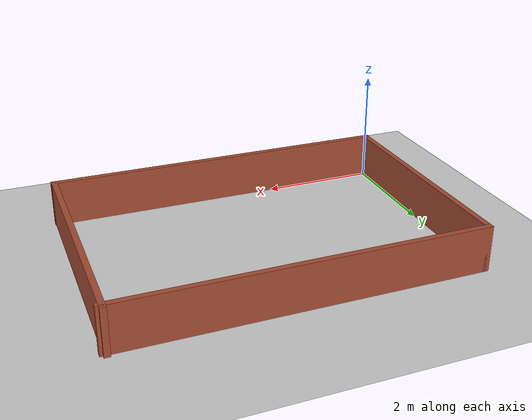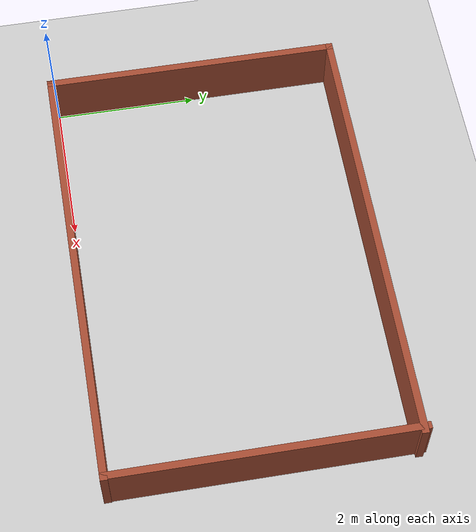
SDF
<sdf version="1.6">
 <world name="default">
  <light name="sun" type="directional">
   <pose>0 0 10 0 -0 0</pose>
   <diffuse>0.8 0.8 0.8 1</diffuse>
   <specular>0.2 0.2 0.2 1</specular>
   <attenuation>
    <range>1000</range>
    <constant>0.9</constant>
    <linear>0.01</linear>
    <quadratic>0.001</quadratic>
   </attenuation>
   <direction>-0.5 0.1 -0.9</direction>
  </light>
  <model name="ground_plane">
   <static>1</static>
   <link name="link">
    <collision name="collision">
     <geometry><plane><normal>0 0 1</normal><size>100 100</size></plane></geometry>
     <surface><friction><ode><mu>100</mu><mu2>50</mu2></ode></friction></surface>
    </collision>
    <visual name="visual">
     <cast_shadows>0</cast_shadows>
     <geometry><plane><normal>0 0 1</normal><size>100 100</size></plane></geometry>
     <material>
      <script><uri>file://media/materials/scripts/gazebo.material</uri><name>Gazebo/Grey</name></script>
     </material>
    </visual>
   </link>
  </model>
  <gravity>0 0 -9.8</gravity>
  <magnetic_field>6e-06 2.3e-05 -4.2e-05</magnetic_field>
  <atmosphere type="adiabatic"/>
  <physics name="default_physics" default="0" type="ode">
   <max_step_size>0.001</max_step_size>
   <real_time_factor>1</real_time_factor>
   <real_time_update_rate>1000</real_time_update_rate>
  </physics>
  <scene><ambient>0.4 0.4 0.4 1</ambient><background>0.7 0.7 0.7 1</background><shadows>1</shadows></scene>
  <audio><device>default</device></audio>
  <spherical_coordinates>
   <surface_model>EARTH_WGS84</surface_model>
   <latitude_deg>0</latitude_deg>
   <longitude_deg>0</longitude_deg>
   <elevation>0</elevation>
   <heading_deg>0</heading_deg>
  </spherical_coordinates>
  <model name="4x6wall">
   <pose>3.025 2.025 0 0 -0 0</pose>
   <link name="Wall_0">
    <collision name="Wall_0_Collision">
     <geometry><box><size>6.2 0.1 0.8</size></box></geometry>
     <pose>0 0 0.4 0 -0 0</pose>
    </collision>
    <visual name="Wall_0_Visual">
     <pose>0 0 0.4 0 -0 0</pose>
     <geometry><box><size>6.2 0.1 0.8</size></box></geometry>
     <material>
      <script><uri>file://media/materials/scripts/gazebo.material</uri><name>Gazebo/Bricks</name></script>
      <ambient>1 1 1 1</ambient>
     </material>
     <meta><layer>0</layer></meta>
    </visual>
    <pose>-0.015 -2.075 0 0 -0 3.14159</pose>
   </link>
   <link name="Wall_2">
    <collision name="Wall_2_Collision">
     <geometry><box><size>4.2 0.1 0.8</size></box></geometry>
     <pose>0 0 0.4 0 -0 0</pose>
    </collision>
    <visual name="Wall_2_Visual">
     <pose>0 0 0.4 0 -0 0</pose>
     <geometry><box><size>4.2 0.1 0.8</size></box></geometry>
     <material>
      <script><uri>file://media/materials/scripts/gazebo.material</uri><name>Gazebo/Bricks</name></script>
      <ambient>1 1 1 1</ambient>
     </material>
     <meta><layer>0</layer></meta>
    </visual>
    <pose>-3.075 -0.025 0 0 -0 1.5708</pose>
   </link>
   <link name="Wall_4">
    <collision name="Wall_4_Collision">
     <geometry><box><size>4.25 0.1 0.8</size></box></geometry>
     <pose>0 0 0.4 0 -0 0</pose>
    </collision>
    <visual name="Wall_4_Visual">
     <pose>0 0 0.4 0 -0 0</pose>
     <geometry><box><size>4.25 0.1 0.8</size></box></geometry>
     <material>
      <script><uri>file://media/materials/scripts/gazebo.material</uri><name>Gazebo/Bricks</name></script>
      <ambient>1 1 1 1</ambient>
     </material>
     <meta><layer>0</layer></meta>
    </visual>
    <pose>3.025 -0 0 0 -0 1.5708</pose>
   </link>
   <link name="Wall_6">
    <collision name="Wall_6_Collision">
     <geometry><box><size>6.25 0.1 0.8</size></box></geometry>
     <pose>0 0 0.4 0 -0 0</pose>
    </collision>
    <visual name="Wall_6_Visual">
     <pose>0 0 0.4 0 -0 0</pose>
     <geometry><box><size>6.25 0.1 0.8</size></box></geometry>
     <material>
      <script><uri>file://media/materials/scripts/gazebo.material</uri><name>Gazebo/Bricks</name></script>
      <ambient>1 1 1 1</ambient>
     </material>
     <meta><layer>0</layer></meta>
    </visual>
    <pose>0 2.025 0 0 -0 0</pose>
   </link>
   <static>1</static>
  </model>
 </world>
</sdf>
